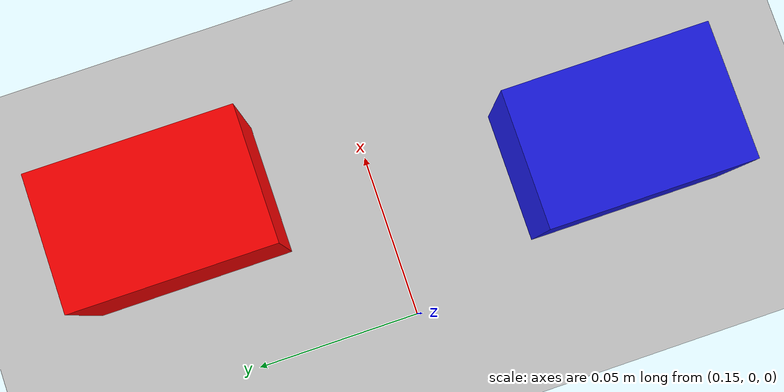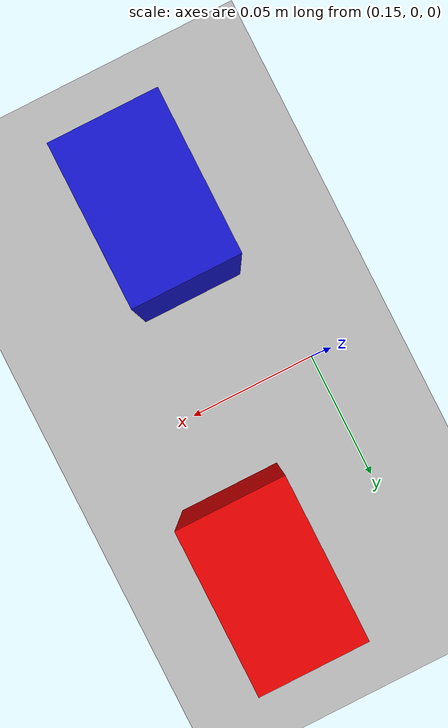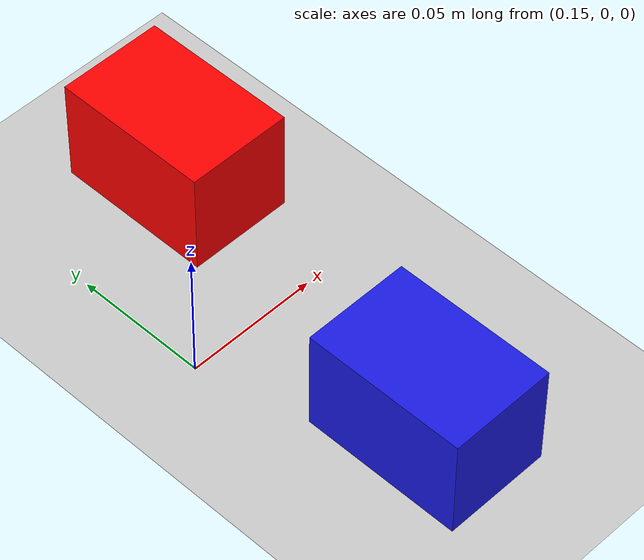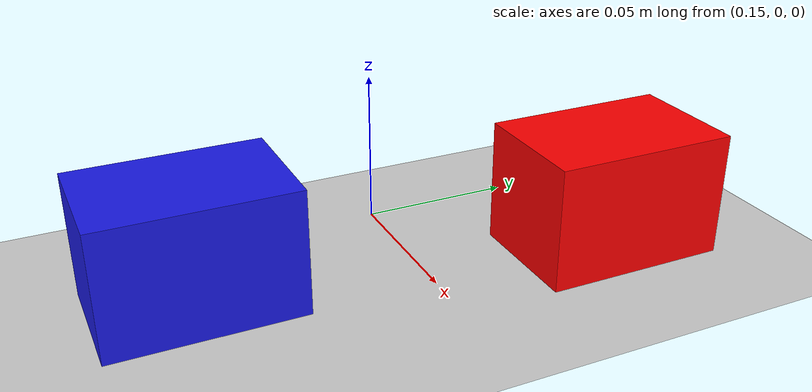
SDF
<?xml version="1.0"?>
<!-- 씬: 빨간 블록 2개.
     블록이 여러 개일 때 인지가 각각을 검출하고, 픽 대상을 고르는 상황 테스트용.
     gz 모델 이름은 유일해야 하므로 red_block_1 / red_block_2. -->
<sdf version="1.10">
  <world name="empty">
    <physics name="1ms" type="ignored">
      <!-- 파지는 접촉이 지배한다. 5ms에서는 한 스텝에 손가락이
           블록 안으로 파고들어 관절값이 오염됐다(2026-08-07 실측:
           블록을 쥔 채 gripper_joint_1 = -5e-05, 즉 완전 닫힘).
           1ms로 낮춰 관통 깊이를 줄인다. 대가는 물리 계산량 5배. -->
      <max_step_size>0.001</max_step_size>
      <real_time_factor>1</real_time_factor>
      <real_time_update_rate>1000</real_time_update_rate>
    </physics>
    <plugin name="gz::sim::systems::Physics" filename="gz-sim-physics-system"/>
    <plugin name="gz::sim::systems::UserCommands" filename="gz-sim-user-commands-system"/>
    <plugin name="gz::sim::systems::SceneBroadcaster" filename="gz-sim-scene-broadcaster-system"/>
    <plugin name="gz::sim::systems::Contact" filename="gz-sim-contact-system"/>
    <plugin name="gz::sim::systems::Sensors" filename="gz-sim-sensors-system">
      <render_engine>ogre2</render_engine>
    </plugin>
    <gravity>0 0 -9.8</gravity>
    <scene>
      <ambient>0.4 0.4 0.4 1</ambient>
      <background>0.7 0.7 0.7 1</background>
      <shadows>true</shadows>
    </scene>

    <model name="ground_plane">
      <static>true</static>
      <link name="link">
        <collision name="collision">
          <geometry><plane><normal>0 0 1</normal><size>100 100</size></plane></geometry>
          <surface><friction><ode/></friction></surface>
        </collision>
        <visual name="visual">
          <geometry><plane><normal>0 0 1</normal><size>100 100</size></plane></geometry>
          <material>
            <ambient>0.8 0.8 0.8 1</ambient>
            <diffuse>0.8 0.8 0.8 1</diffuse>
          </material>
        </visual>
      </link>
    </model>

    <light name="sun" type="directional">
      <pose>0 0 10 0 0 0</pose>
      <cast_shadows>true</cast_shadows>
      <intensity>1</intensity>
      <direction>-0.5 0.1 -0.9</direction>
      <diffuse>0.8 0.8 0.8 1</diffuse>
      <specular>0.2 0.2 0.2 1</specular>
      <attenuation><range>1000</range><linear>0.01</linear><constant>0.9</constant><quadratic>0.001</quadratic></attenuation>
    </light>

    <model name="red_block">
      <pose>0.20 0.06 0.02 0 0 0</pose>
      <link name="link">
        <inertial>
          <mass>0.05</mass>
          <inertia><ixx>0.0000217</ixx><ixy>0</ixy><ixz>0</ixz><iyy>0.0000133</iyy><iyz>0</iyz><izz>0.0000217</izz></inertia>
        </inertial>
        <collision name="collision">
          <geometry><box><size>0.04 0.06 0.04</size></box></geometry>
          <surface><friction><ode><mu>1.0</mu><mu2>1.0</mu2></ode></friction></surface>
        </collision>
        <visual name="visual">
          <geometry><box><size>0.04 0.06 0.04</size></box></geometry>
          <material><ambient>1 0 0 1</ambient><diffuse>1 0 0 1</diffuse><specular>0.1 0.1 0.1 1</specular></material>
        </visual>
      </link>
    </model>

    <model name="blue_block">
      <pose>0.18 -0.07 0.02 0 0 0</pose>
      <link name="link">
        <inertial>
          <mass>0.05</mass>
          <inertia><ixx>0.0000217</ixx><ixy>0</ixy><ixz>0</ixz><iyy>0.0000133</iyy><iyz>0</iyz><izz>0.0000217</izz></inertia>
        </inertial>
        <collision name="collision">
          <geometry><box><size>0.04 0.06 0.04</size></box></geometry>
          <surface><friction><ode><mu>1.0</mu><mu2>1.0</mu2></ode></friction></surface>
        </collision>
        <visual name="visual">
          <geometry><box><size>0.04 0.06 0.04</size></box></geometry>
          <material><ambient>0.1 0.1 0.9 1</ambient><diffuse>0.1 0.1 0.9 1</diffuse><specular>0.1 0.1 0.1 1</specular></material>
        </visual>
      </link>
    </model>

  </world>
</sdf>
